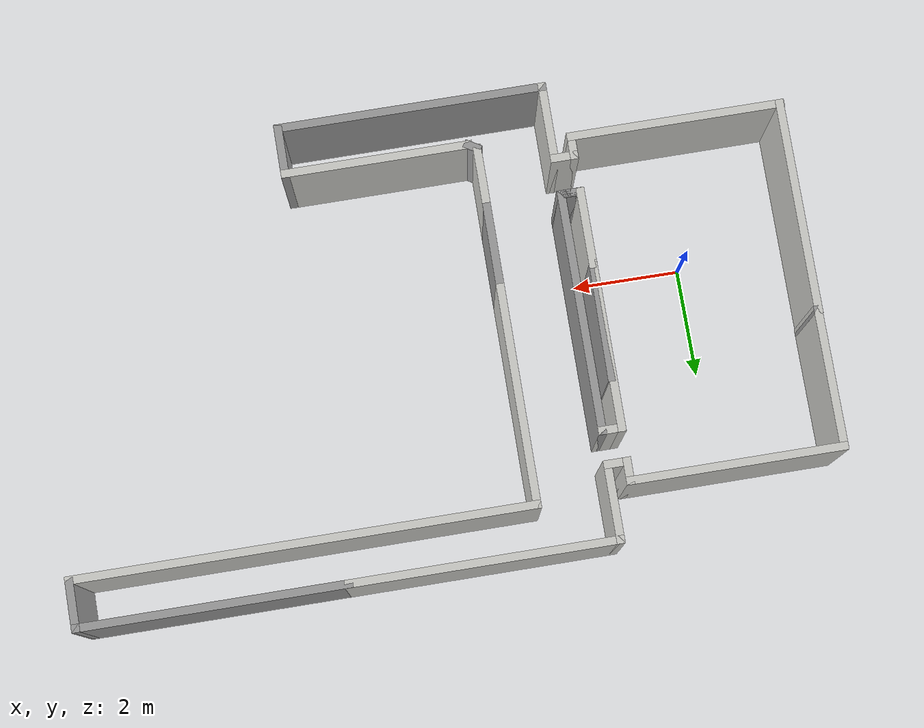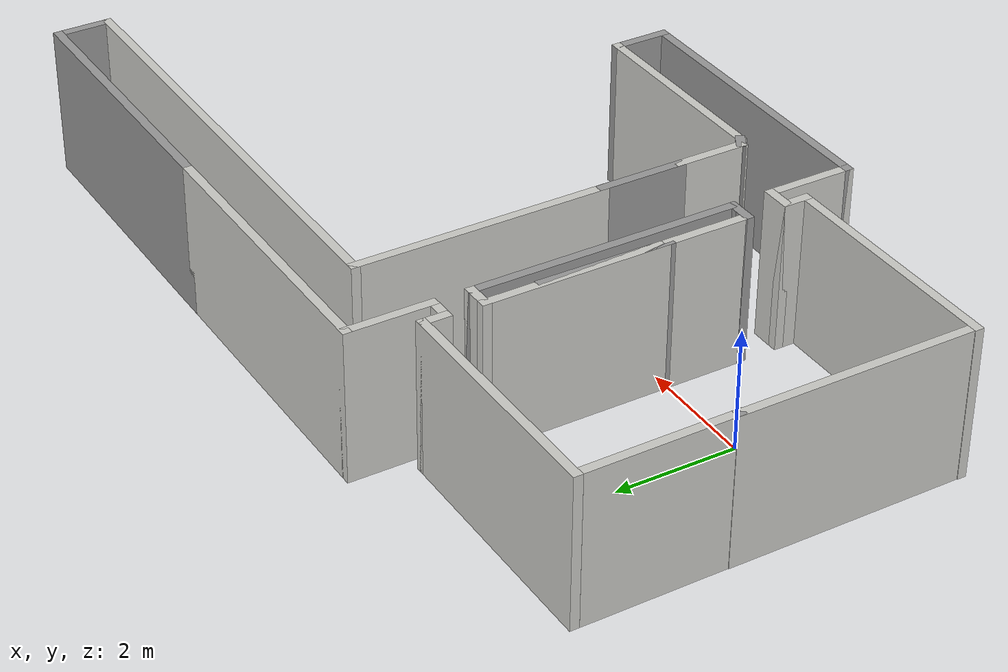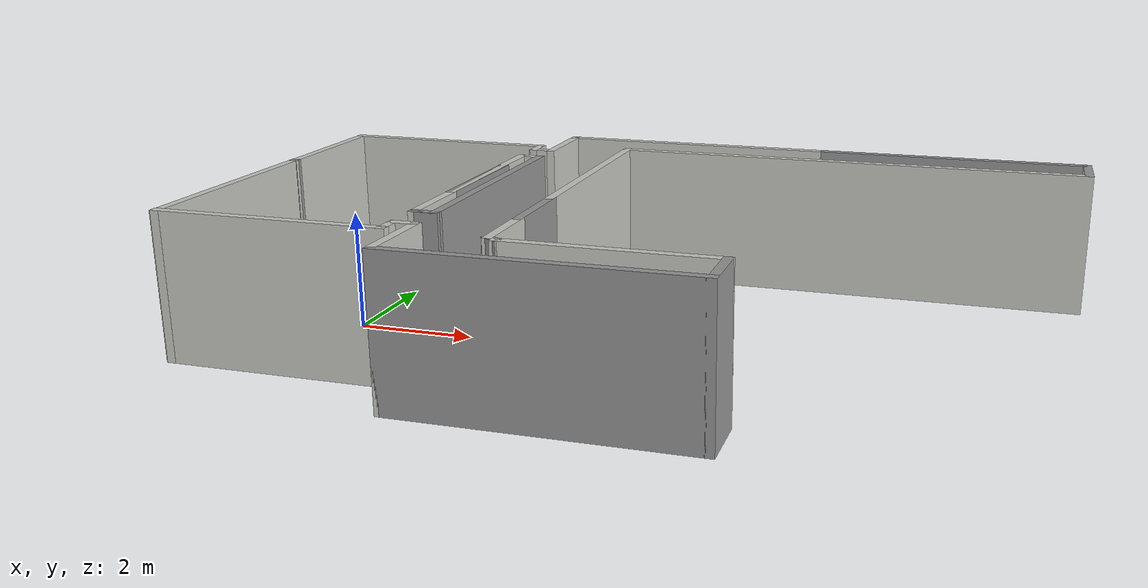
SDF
<?xml version='1.0'?>
<sdf version='1.6'>
  <model name='lab'>
    <pose frame=''>4.875 0.84 0 0 -0 0</pose>
    <link name='Wall_0'>
      <collision name='Wall_0_Collision'>
        <geometry>
          <box>
            <size>4 0.15 2.5</size>
          </box>
        </geometry>
        <pose frame=''>0 0 1.25 0 -0 0</pose>
      </collision>
      <visual name='Wall_0_Visual'>
        <pose frame=''>0 0 1.25 0 -0 0</pose>
        <geometry>
          <box>
            <size>4 0.15 2.5</size>
          </box>
        </geometry>
        <material>
          <script>
            <uri>file://media/materials/scripts/gazebo.material</uri>
            <name>Gazebo/CeilingTiled</name>
          </script>
          <ambient>1 1 1 1</ambient>
        </material>
        <meta>
          <layer>0</layer>
        </meta>
      </visual>
      <pose frame=''>-6.945 -1.245 0 0 -0 1.5708</pose>
    </link>
    <link name='Wall_1'>
      <collision name='Wall_1_Collision'>
        <geometry>
          <box>
            <size>0.15 0.15 2.5</size>
          </box>
        </geometry>
        <pose frame=''>0 0 1.25 0 -0 0</pose>
      </collision>
      <visual name='Wall_1_Visual'>
        <pose frame=''>0 0 1.25 0 -0 0</pose>
        <geometry>
          <box>
            <size>0.15 0.15 2.5</size>
          </box>
        </geometry>
        <material>
          <script>
            <uri>file://media/materials/scripts/gazebo.material</uri>
            <name>Gazebo/Grey</name>
          </script>
          <ambient>1 1 1 1</ambient>
        </material>
        <meta>
          <layer>0</layer>
        </meta>
      </visual>
      <pose frame=''>-6.935 0.68 0 0 -0 0</pose>
    </link>
    <link name='Wall_130'>
      <collision name='Wall_130_Collision'>
        <geometry>
          <box>
            <size>0.51 0.15 2.5</size>
          </box>
        </geometry>
        <pose frame=''>0 0 1.25 0 -0 0</pose>
      </collision>
      <visual name='Wall_130_Visual'>
        <pose frame=''>0 0 1.25 0 -0 0</pose>
        <geometry>
          <box>
            <size>0.51 0.15 2.5</size>
          </box>
        </geometry>
        <material>
          <script>
            <uri>file://media/materials/scripts/gazebo.material</uri>
            <name>Gazebo/CeilingTiled</name>
          </script>
          <ambient>1 1 1 1</ambient>
        </material>
        <meta>
          <layer>0</layer>
        </meta>
      </visual>
      <pose frame=''>-2.925 -2.82 0 0 -0 0</pose>
    </link>
    <link name='Wall_132'>
      <collision name='Wall_132_Collision'>
        <geometry>
          <box>
            <size>0.5 0.15 2.5</size>
          </box>
        </geometry>
        <pose frame=''>0 0 1.25 0 -0 0</pose>
      </collision>
      <visual name='Wall_132_Visual'>
        <pose frame=''>0 0 1.25 0 -0 0</pose>
        <geometry>
          <box>
            <size>0.5 0.15 2.5</size>
          </box>
        </geometry>
        <material>
          <script>
            <uri>file://media/materials/scripts/gazebo.material</uri>
            <name>Gazebo/Grey</name>
          </script>
          <ambient>1 1 1 1</ambient>
        </material>
        <meta>
          <layer>0</layer>
        </meta>
      </visual>
      <pose frame=''>-2.93 -2.14 0 0 -0 0</pose>
    </link>
    <link name='Wall_133'>
      <collision name='Wall_133_Collision'>
        <geometry>
          <box>
            <size>0.5 0.15 2.5</size>
          </box>
        </geometry>
        <pose frame=''>0 0 1.25 0 -0 0</pose>
      </collision>
      <visual name='Wall_133_Visual'>
        <pose frame=''>0 0 1.25 0 -0 0</pose>
        <geometry>
          <box>
            <size>0.5 0.15 2.5</size>
          </box>
        </geometry>
        <material>
          <script>
            <uri>file://media/materials/scripts/gazebo.material</uri>
            <name>Gazebo/Grey</name>
          </script>
          <ambient>1 1 1 1</ambient>
        </material>
        <meta>
          <layer>0</layer>
        </meta>
      </visual>
      <pose frame=''>-2.93 -2.14 0 0 -0 3.14159</pose>
    </link>
    <link name='Wall_134'>
      <collision name='Wall_134_Collision'>
        <geometry>
          <box>
            <size>1.5 0.15 2.5</size>
          </box>
        </geometry>
        <pose frame=''>0 0 1.25 0 -0 0</pose>
      </collision>
      <visual name='Wall_134_Visual'>
        <pose frame=''>0 0 1.25 0 -0 0</pose>
        <geometry>
          <box>
            <size>1.5 0.15 2.5</size>
          </box>
        </geometry>
        <material>
          <script>
            <uri>file://media/materials/scripts/gazebo.material</uri>
            <name>Gazebo/CeilingTiled</name>
          </script>
          <ambient>1 1 1 1</ambient>
        </material>
        <meta>
          <layer>0</layer>
        </meta>
      </visual>
      <pose frame=''>-3.105 -1.465 0 0 -0 1.5708</pose>
    </link>
    <link name='Wall_136'>
      <collision name='Wall_136_Collision'>
        <geometry>
          <box>
            <size>2.2301 0.15 2.5</size>
          </box>
        </geometry>
        <pose frame=''>0 0 1.25 0 -0 0</pose>
      </collision>
      <visual name='Wall_136_Visual'>
        <pose frame=''>0 0 1.25 0 -0 0</pose>
        <geometry>
          <box>
            <size>2.2301 0.15 2.5</size>
          </box>
        </geometry>
        <material>
          <script>
            <uri>file://media/materials/scripts/gazebo.material</uri>
            <name>Gazebo/Grey</name>
          </script>
          <ambient>1 1 1 1</ambient>
        </material>
        <meta>
          <layer>0</layer>
        </meta>
      </visual>
      <pose frame=''>-3.095 0.25 0 0 -0 1.56118</pose>
    </link>
    <link name='Wall_160'>
      <collision name='Wall_160_Collision'>
        <geometry>
          <box>
            <size>0.5 0.15 2.5</size>
          </box>
        </geometry>
        <pose frame=''>0 0 1.25 0 -0 0</pose>
      </collision>
      <visual name='Wall_160_Visual'>
        <pose frame=''>0 0 1.25 0 -0 0</pose>
        <geometry>
          <box>
            <size>0.5 0.15 2.5</size>
          </box>
        </geometry>
        <material>
          <script>
            <uri>file://media/materials/scripts/gazebo.material</uri>
            <name>Gazebo/CeilingTiled</name>
          </script>
          <ambient>1 1 1 1</ambient>
        </material>
        <meta>
          <layer>0</layer>
        </meta>
      </visual>
      <pose frame=''>-3.095 2.995 0 0 -0 -1.5708</pose>
    </link>
    <link name='Wall_161'>
      <collision name='Wall_161_Collision'>
        <geometry>
          <box>
            <size>0.5 0.15 2.5</size>
          </box>
        </geometry>
        <pose frame=''>0 0 1.25 0 -0 0</pose>
      </collision>
      <visual name='Wall_161_Visual'>
        <pose frame=''>0 0 1.25 0 -0 0</pose>
        <geometry>
          <box>
            <size>0.5 0.15 2.5</size>
          </box>
        </geometry>
        <material>
          <script>
            <uri>file://media/materials/scripts/gazebo.material</uri>
            <name>Gazebo/CeilingTiled</name>
          </script>
          <ambient>1 1 1 1</ambient>
        </material>
        <meta>
          <layer>0</layer>
        </meta>
      </visual>
      <pose frame=''>-2.92 2.82 0 0 -0 0</pose>
    </link>
    <link name='Wall_162'>
      <collision name='Wall_162_Collision'>
        <geometry>
          <box>
            <size>1.5 0.15 2.5</size>
          </box>
        </geometry>
        <pose frame=''>0 0 1.25 0 -0 0</pose>
      </collision>
      <visual name='Wall_162_Visual'>
        <pose frame=''>0 0 1.25 0 -0 0</pose>
        <geometry>
          <box>
            <size>1.5 0.15 2.5</size>
          </box>
        </geometry>
        <material>
          <script>
            <uri>file://media/materials/scripts/gazebo.material</uri>
            <name>Gazebo/CeilingTiled</name>
          </script>
          <ambient>1 1 1 1</ambient>
        </material>
        <meta>
          <layer>0</layer>
        </meta>
      </visual>
      <pose frame=''>-2.745 3.495 0 0 -0 1.5708</pose>
    </link>
    <link name='Wall_163'>
      <collision name='Wall_163_Collision'>
        <geometry>
          <box>
            <size>5 0.15 2.5</size>
          </box>
        </geometry>
        <pose frame=''>0 0 1.25 0 -0 0</pose>
      </collision>
      <visual name='Wall_163_Visual'>
        <pose frame=''>0 0 1.25 0 -0 0</pose>
        <geometry>
          <box>
            <size>5 0.15 2.5</size>
          </box>
        </geometry>
        <material>
          <script>
            <uri>file://media/materials/scripts/gazebo.material</uri>
            <name>Gazebo/CeilingTiled</name>
          </script>
          <ambient>1 1 1 1</ambient>
        </material>
        <meta>
          <layer>0</layer>
        </meta>
      </visual>
      <pose frame=''>-0.320001 4.17 0 0 -0 0</pose>
    </link>
    <link name='Wall_165'>
      <collision name='Wall_165_Collision'>
        <geometry>
          <box>
            <size>5 0.15 2.5</size>
          </box>
        </geometry>
        <pose frame=''>0 0 1.25 0 -0 0</pose>
      </collision>
      <visual name='Wall_165_Visual'>
        <pose frame=''>0 0 1.25 0 -0 0</pose>
        <geometry>
          <box>
            <size>5 0.15 2.5</size>
          </box>
        </geometry>
        <material>
          <script>
            <uri>file://media/materials/scripts/gazebo.material</uri>
            <name>Gazebo/Grey</name>
          </script>
          <ambient>1 1 1 1</ambient>
        </material>
        <meta>
          <layer>0</layer>
        </meta>
      </visual>
      <pose frame=''>4.53 4.17 0 0 -0 0</pose>
    </link>
    <link name='Wall_166'>
      <collision name='Wall_166_Collision'>
        <geometry>
          <box>
            <size>1 0.15 2.5</size>
          </box>
        </geometry>
        <pose frame=''>0 0 1.25 0 -0 0</pose>
      </collision>
      <visual name='Wall_166_Visual'>
        <pose frame=''>0 0 1.25 0 -0 0</pose>
        <geometry>
          <box>
            <size>1 0.15 2.5</size>
          </box>
        </geometry>
        <material>
          <script>
            <uri>file://media/materials/scripts/gazebo.material</uri>
            <name>Gazebo/Grey</name>
          </script>
          <ambient>1 1 1 1</ambient>
        </material>
        <meta>
          <layer>0</layer>
        </meta>
      </visual>
      <pose frame=''>6.955 3.745 0 0 -0 -1.5708</pose>
    </link>
    <link name='Wall_167'>
      <collision name='Wall_167_Collision'>
        <geometry>
          <box>
            <size>8.5 0.15 2.5</size>
          </box>
        </geometry>
        <pose frame=''>0 0 1.25 0 -0 0</pose>
      </collision>
      <visual name='Wall_167_Visual'>
        <pose frame=''>0 0 1.25 0 -0 0</pose>
        <geometry>
          <box>
            <size>8.5 0.15 2.5</size>
          </box>
        </geometry>
        <material>
          <script>
            <uri>file://media/materials/scripts/gazebo.material</uri>
            <name>Gazebo/CeilingTiled</name>
          </script>
          <ambient>1 1 1 1</ambient>
        </material>
        <meta>
          <layer>0</layer>
        </meta>
      </visual>
      <pose frame=''>2.78 3.32 0 0 -0 3.14159</pose>
    </link>
    <link name='Wall_171'>
      <collision name='Wall_171_Collision'>
        <geometry>
          <box>
            <size>4.25 0.15 2.5</size>
          </box>
        </geometry>
        <pose frame=''>0 0 1.25 0 -0 0</pose>
      </collision>
      <visual name='Wall_171_Visual'>
        <pose frame=''>0 0 1.25 0 -0 0</pose>
        <geometry>
          <box>
            <size>4.25 0.15 2.5</size>
          </box>
        </geometry>
        <material>
          <script>
            <uri>file://media/materials/scripts/gazebo.material</uri>
            <name>Gazebo/CeilingTiled</name>
          </script>
          <ambient>1 1 1 1</ambient>
        </material>
        <meta>
          <layer>0</layer>
        </meta>
      </visual>
      <pose frame=''>-1.395 1.27 0 0 -0 -1.5708</pose>
    </link>
    <link name='Wall_173'>
      <collision name='Wall_173_Collision'>
        <geometry>
          <box>
            <size>1.5 0.15 2.5</size>
          </box>
        </geometry>
        <pose frame=''>0 0 1.25 0 -0 0</pose>
      </collision>
      <visual name='Wall_173_Visual'>
        <pose frame=''>0 0 1.25 0 -0 0</pose>
        <geometry>
          <box>
            <size>1.5 0.15 2.5</size>
          </box>
        </geometry>
        <material>
          <script>
            <uri>file://media/materials/scripts/gazebo.material</uri>
            <name>Gazebo/Grey</name>
          </script>
          <ambient>1 1 1 1</ambient>
        </material>
        <meta>
          <layer>0</layer>
        </meta>
      </visual>
      <pose frame=''>-1.395 -1.455 0 0 -0 -1.5708</pose>
    </link>
    <link name='Wall_177'>
      <collision name='Wall_177_Collision'>
        <geometry>
          <box>
            <size>0.5 0.15 2.5</size>
          </box>
        </geometry>
        <pose frame=''>0 0 1.25 0 -0 0</pose>
      </collision>
      <visual name='Wall_177_Visual'>
        <pose frame=''>0 0 1.25 0 -0 0</pose>
        <geometry>
          <box>
            <size>0.5 0.15 2.5</size>
          </box>
        </geometry>
        <material>
          <script>
            <uri>file://media/materials/scripts/gazebo.material</uri>
            <name>Gazebo/CeilingTiled</name>
          </script>
          <ambient>1 1 1 1</ambient>
        </material>
        <meta>
          <layer>0</layer>
        </meta>
      </visual>
      <pose frame=''>-3.105 -2.995 0 0 -0 -1.5708</pose>
    </link>
    <link name='Wall_178'>
      <collision name='Wall_178_Collision'>
        <geometry>
          <box>
            <size>4 0.15 2.5</size>
          </box>
        </geometry>
        <pose frame=''>0 0 1.25 0 -0 0</pose>
      </collision>
      <visual name='Wall_178_Visual'>
        <pose frame=''>0 0 1.25 0 -0 0</pose>
        <geometry>
          <box>
            <size>4 0.15 2.5</size>
          </box>
        </geometry>
        <material>
          <script>
            <uri>file://media/materials/scripts/gazebo.material</uri>
            <name>Gazebo/CeilingTiled</name>
          </script>
          <ambient>1 1 1 1</ambient>
        </material>
        <meta>
          <layer>0</layer>
        </meta>
      </visual>
      <pose frame=''>-5.03 -3.17 0 0 -0 3.14159</pose>
    </link>
    <link name='Wall_184'>
      <collision name='Wall_184_Collision'>
        <geometry>
          <box>
            <size>3.15 0.15 2.5</size>
          </box>
        </geometry>
        <pose frame=''>0 0 1.25 0 -0 0</pose>
      </collision>
      <visual name='Wall_184_Visual'>
        <pose frame=''>0 0 1.25 0 -0 0</pose>
        <geometry>
          <box>
            <size>3.15 0.15 2.5</size>
          </box>
        </geometry>
        <material>
          <script>
            <uri>file://media/materials/scripts/gazebo.material</uri>
            <name>Gazebo/CeilingTiled</name>
          </script>
          <ambient>1 1 1 1</ambient>
        </material>
        <meta>
          <layer>0</layer>
        </meta>
      </visual>
      <pose frame=''>-3.105 0.71 0 0 -0 -1.5708</pose>
    </link>
    <link name='Wall_190'>
      <collision name='Wall_190_Collision'>
        <geometry>
          <box>
            <size>1.5 0.15 2.5</size>
          </box>
        </geometry>
        <pose frame=''>0 0 1.25 0 -0 0</pose>
      </collision>
      <visual name='Wall_190_Visual'>
        <pose frame=''>0 0 1.25 0 -0 0</pose>
        <geometry>
          <box>
            <size>1.5 0.15 2.5</size>
          </box>
        </geometry>
        <material>
          <script>
            <uri>file://media/materials/scripts/gazebo.material</uri>
            <name>Gazebo/CeilingTiled</name>
          </script>
          <ambient>1 1 1 1</ambient>
        </material>
        <meta>
          <layer>0</layer>
        </meta>
      </visual>
      <pose frame=''>-2.745 -3.495 0 0 -0 -1.5708</pose>
    </link>
    <link name='Wall_191'>
      <collision name='Wall_191_Collision'>
        <geometry>
          <box>
            <size>5 0.15 2.5</size>
          </box>
        </geometry>
        <pose frame=''>0 0 1.25 0 -0 0</pose>
      </collision>
      <visual name='Wall_191_Visual'>
        <pose frame=''>0 0 1.25 0 -0 0</pose>
        <geometry>
          <box>
            <size>5 0.15 2.5</size>
          </box>
        </geometry>
        <material>
          <script>
            <uri>file://media/materials/scripts/gazebo.material</uri>
            <name>Gazebo/Grey</name>
          </script>
          <ambient>1 1 1 1</ambient>
        </material>
        <meta>
          <layer>0</layer>
        </meta>
      </visual>
      <pose frame=''>-0.320001 -4.17 0 0 -0 0</pose>
    </link>
    <link name='Wall_192'>
      <collision name='Wall_192_Collision'>
        <geometry>
          <box>
            <size>1 0.15 2.5</size>
          </box>
        </geometry>
        <pose frame=''>0 0 1.25 0 -0 0</pose>
      </collision>
      <visual name='Wall_192_Visual'>
        <pose frame=''>0 0 1.25 0 -0 0</pose>
        <geometry>
          <box>
            <size>1 0.15 2.5</size>
          </box>
        </geometry>
        <material>
          <script>
            <uri>file://media/materials/scripts/gazebo.material</uri>
            <name>Gazebo/Grey</name>
          </script>
          <ambient>1 1 1 1</ambient>
        </material>
        <meta>
          <layer>0</layer>
        </meta>
      </visual>
      <pose frame=''>2.105 -3.745 0 0 -0 1.5708</pose>
    </link>
    <link name='Wall_193'>
      <collision name='Wall_193_Collision'>
        <geometry>
          <box>
            <size>3.5 0.15 2.5</size>
          </box>
        </geometry>
        <pose frame=''>0 0 1.25 0 -0 0</pose>
      </collision>
      <visual name='Wall_193_Visual'>
        <pose frame=''>0 0 1.25 0 -0 0</pose>
        <geometry>
          <box>
            <size>3.5 0.15 2.5</size>
          </box>
        </geometry>
        <material>
          <script>
            <uri>file://media/materials/scripts/gazebo.material</uri>
            <name>Gazebo/CeilingTiled</name>
          </script>
          <ambient>1 1 1 1</ambient>
        </material>
        <meta>
          <layer>0</layer>
        </meta>
      </visual>
      <pose frame=''>0.429999 -3.32 0 0 -0 3.14159</pose>
    </link>
    <link name='Wall_195'>
      <collision name='Wall_195_Collision'>
        <geometry>
          <box>
            <size>1.25 0.15 2.5</size>
          </box>
        </geometry>
        <pose frame=''>0 0 1.25 0 -0 0</pose>
      </collision>
      <visual name='Wall_195_Visual'>
        <pose frame=''>0 0 1.25 0 -0 0</pose>
        <geometry>
          <box>
            <size>1.25 0.15 2.5</size>
          </box>
        </geometry>
        <material>
          <script>
            <uri>file://media/materials/scripts/gazebo.material</uri>
            <name>Gazebo/CeilingTiled</name>
          </script>
          <ambient>1 1 1 1</ambient>
        </material>
        <meta>
          <layer>0</layer>
        </meta>
      </visual>
      <pose frame=''>-1.395 -2.68 0 0 -0 -1.5708</pose>
    </link>
    <link name='Wall_196'>
      <collision name='Wall_196_Collision'>
        <geometry>
          <box>
            <size>0.324929 0.15 2.5</size>
          </box>
        </geometry>
        <pose frame=''>0 0 1.25 0 -0 0</pose>
      </collision>
      <visual name='Wall_196_Visual'>
        <pose frame=''>0 0 1.25 0 -0 0</pose>
        <geometry>
          <box>
            <size>0.324929 0.15 2.5</size>
          </box>
        </geometry>
        <material>
          <script>
            <uri>file://media/materials/scripts/gazebo.material</uri>
            <name>Gazebo/Grey</name>
          </script>
          <ambient>1 1 1 1</ambient>
        </material>
        <meta>
          <layer>0</layer>
        </meta>
      </visual>
      <pose frame=''>-1.32 -3.275 0 0 -0 -0.54042</pose>
    </link>
    <link name='Wall_198'>
      <collision name='Wall_198_Collision'>
        <geometry>
          <box>
            <size>0.5 0.15 2.5</size>
          </box>
        </geometry>
        <pose frame=''>0 0 1.25 0 -0 0</pose>
      </collision>
      <visual name='Wall_198_Visual'>
        <pose frame=''>0 0 1.25 0 -0 0</pose>
        <geometry>
          <box>
            <size>0.5 0.15 2.5</size>
          </box>
        </geometry>
        <material>
          <script>
            <uri>file://media/materials/scripts/gazebo.material</uri>
            <name>Gazebo/CeilingTiled</name>
          </script>
          <ambient>1 1 1 1</ambient>
        </material>
        <meta>
          <layer>0</layer>
        </meta>
      </visual>
      <pose frame=''>-2.93 2.21 0 0 -0 0</pose>
    </link>
    <link name='Wall_200'>
      <collision name='Wall_200_Collision'>
        <geometry>
          <box>
            <size>4.5 0.15 2.5</size>
          </box>
        </geometry>
        <pose frame=''>0 0 1.25 0 -0 0</pose>
      </collision>
      <visual name='Wall_200_Visual'>
        <pose frame=''>0 0 1.25 0 -0 0</pose>
        <geometry>
          <box>
            <size>4.5 0.15 2.5</size>
          </box>
        </geometry>
        <material>
          <script>
            <uri>file://media/materials/scripts/gazebo.material</uri>
            <name>Gazebo/Grey</name>
          </script>
          <ambient>1 1 1 1</ambient>
        </material>
        <meta>
          <layer>0</layer>
        </meta>
      </visual>
      <pose frame=''>-2.755 0.035 0 0 -0 -1.5708</pose>
    </link>
    <link name='Wall_3'>
      <collision name='Wall_3_Collision'>
        <geometry>
          <box>
            <size>2.49002 0.15 2.5</size>
          </box>
        </geometry>
        <pose frame=''>0 0 1.25 0 -0 0</pose>
      </collision>
      <visual name='Wall_3_Visual'>
        <pose frame=''>0 0 1.25 0 -0 0</pose>
        <geometry>
          <box>
            <size>2.49002 0.15 2.5</size>
          </box>
        </geometry>
        <material>
          <script>
            <uri>file://media/materials/scripts/gazebo.material</uri>
            <name>Gazebo/CeilingTiled</name>
          </script>
          <ambient>1 1 1 1</ambient>
        </material>
        <meta>
          <layer>0</layer>
        </meta>
      </visual>
      <pose frame=''>-6.94 1.85 0 0 -0 1.57507</pose>
    </link>
    <link name='Wall_7'>
      <collision name='Wall_7_Collision'>
        <geometry>
          <box>
            <size>4 0.15 2.5</size>
          </box>
        </geometry>
        <pose frame=''>0 0 1.25 0 -0 0</pose>
      </collision>
      <visual name='Wall_7_Visual'>
        <pose frame=''>0 0 1.25 0 -0 0</pose>
        <geometry>
          <box>
            <size>4 0.15 2.5</size>
          </box>
        </geometry>
        <material>
          <script>
            <uri>file://media/materials/scripts/gazebo.material</uri>
            <name>Gazebo/CeilingTiled</name>
          </script>
          <ambient>1 1 1 1</ambient>
        </material>
        <meta>
          <layer>0</layer>
        </meta>
      </visual>
      <pose frame=''>-5.02 3.17 0 0 -0 0</pose>
    </link>
    <static>1</static>
  </model>
</sdf>
